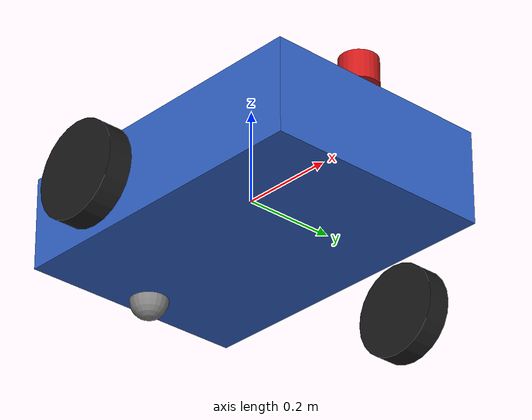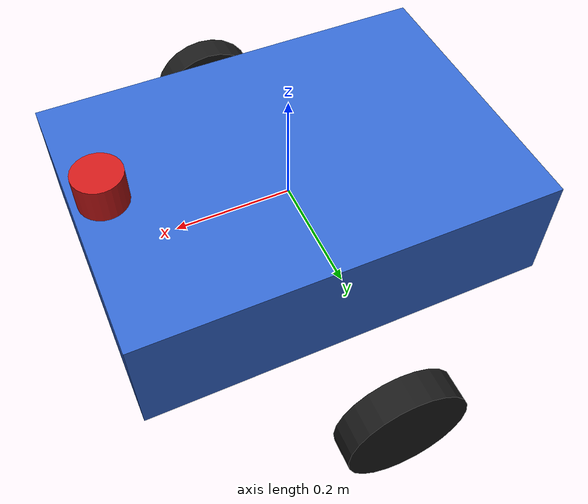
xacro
<?xml version="1.0"?>
<robot name="trolley" xmlns:xacro="http://www.ros.org/wiki/xacro">

  <xacro:property name="base_w"  value="0.50"/>
  <xacro:property name="base_d"  value="0.70"/>
  <xacro:property name="base_h"  value="0.20"/>
  <xacro:property name="wheel_r" value="0.10"/>
  <xacro:property name="wheel_w" value="0.05"/>
  <xacro:property name="wb"      value="0.41"/>  <!-- half wheel_base -->

  <!-- Base -->
  <link name="base_link">
    <visual>
      <geometry><box size="${base_d} ${base_w} ${base_h}"/></geometry>
      <material name="blue"><color rgba="0.2 0.4 0.8 1"/></material>
    </visual>
    <collision><geometry><box size="${base_d} ${base_w} ${base_h}"/></geometry></collision>
    <inertial><mass value="10"/><inertia ixx="0.1" ixy="0" ixz="0" iyy="0.2" iyz="0" izz="0.2"/></inertial>
  </link>

  <!-- Left wheel -->
  <link name="wheel_left">
    <visual><geometry><cylinder radius="${wheel_r}" length="${wheel_w}"/></geometry>
      <material name="black"><color rgba="0.1 0.1 0.1 1"/></material></visual>
    <collision><geometry><cylinder radius="${wheel_r}" length="${wheel_w}"/></geometry></collision>
    <inertial><mass value="0.5"/><inertia ixx="0.01" ixy="0" ixz="0" iyy="0.01" iyz="0" izz="0.01"/></inertial>
  </link>
  <joint name="joint_wheel_left" type="continuous">
    <parent link="base_link"/><child link="wheel_left"/>
    <origin xyz="0 ${wb} ${-base_h/2}" rpy="${pi/2} 0 0"/>
    <axis xyz="0 0 1"/>
  </joint>

  <!-- Right wheel -->
  <link name="wheel_right">
    <visual><geometry><cylinder radius="${wheel_r}" length="${wheel_w}"/></geometry>
      <material name="black"><color rgba="0.1 0.1 0.1 1"/></material></visual>
    <collision><geometry><cylinder radius="${wheel_r}" length="${wheel_w}"/></geometry></collision>
    <inertial><mass value="0.5"/><inertia ixx="0.01" ixy="0" ixz="0" iyy="0.01" iyz="0" izz="0.01"/></inertial>
  </link>
  <joint name="joint_wheel_right" type="continuous">
    <parent link="base_link"/><child link="wheel_right"/>
    <origin xyz="0 ${-wb} ${-base_h/2}" rpy="${pi/2} 0 0"/>
    <axis xyz="0 0 1"/>
  </joint>

  <!-- Caster -->
  <link name="caster"><visual><geometry><sphere radius="0.04"/></geometry>
    <material name="gray"><color rgba="0.5 0.5 0.5 1"/></material></visual>
    <collision><geometry><sphere radius="0.04"/></geometry></collision>
    <inertial><mass value="0.2"/><inertia ixx="0.001" ixy="0" ixz="0" iyy="0.001" iyz="0" izz="0.001"/></inertial>
  </link>
  <joint name="caster_joint" type="fixed">
    <parent link="base_link"/><child link="caster"/>
    <origin xyz="${-base_d/2+0.05} 0 ${-base_h/2}"/>
  </joint>

  <!-- LIDAR -->
  <link name="base_laser">
    <visual><geometry><cylinder radius="0.04" length="0.06"/></geometry>
      <material name="red"><color rgba="0.8 0.1 0.1 1"/></material></visual>
    <inertial><mass value="0.1"/><inertia ixx="0.001" ixy="0" ixz="0" iyy="0.001" iyz="0" izz="0.001"/></inertial>
  </link>
  <joint name="lidar_joint" type="fixed">
    <parent link="base_link"/><child link="base_laser"/>
    <origin xyz="${base_d/2-0.05} 0 ${base_h/2+0.05}"/>
  </joint>

  <!-- Gazebo plugins -->
  <gazebo>
    <plugin filename="gz-sim-diff-drive-system" name="gz::sim::systems::DiffDrive">
      <left_joint>joint_wheel_left</left_joint>
      <right_joint>joint_wheel_right</right_joint>
      <wheel_separation>${wb*2}</wheel_separation>
      <wheel_radius>${wheel_r}</wheel_radius>
      <max_velocity>3.0</max_velocity>
      <max_linear_acceleration>2</max_linear_acceleration>
      <topic>cmd_vel</topic>
      <odom_topic>odom</odom_topic>
      <frame_id>odom</frame_id>
      <child_frame_id>base_link</child_frame_id>
    </plugin>
  </gazebo>

  <!-- LIDAR sensor -->
  <gazebo reference="base_laser">
    <sensor name="lidar" type="gpu_lidar">
      <always_on>true</always_on>
      <update_rate>10</update_rate>
      <topic>scan</topic>
      <lidar>
        <scan><horizontal>
          <samples>360</samples><resolution>1</resolution>
          <min_angle>-3.14159</min_angle><max_angle>3.14159</max_angle>
        </horizontal></scan>
        <range><min>0.10</min><max>8.0</max><resolution>0.01</resolution></range>
      </lidar>
    </sensor>
  </gazebo>

</robot>
